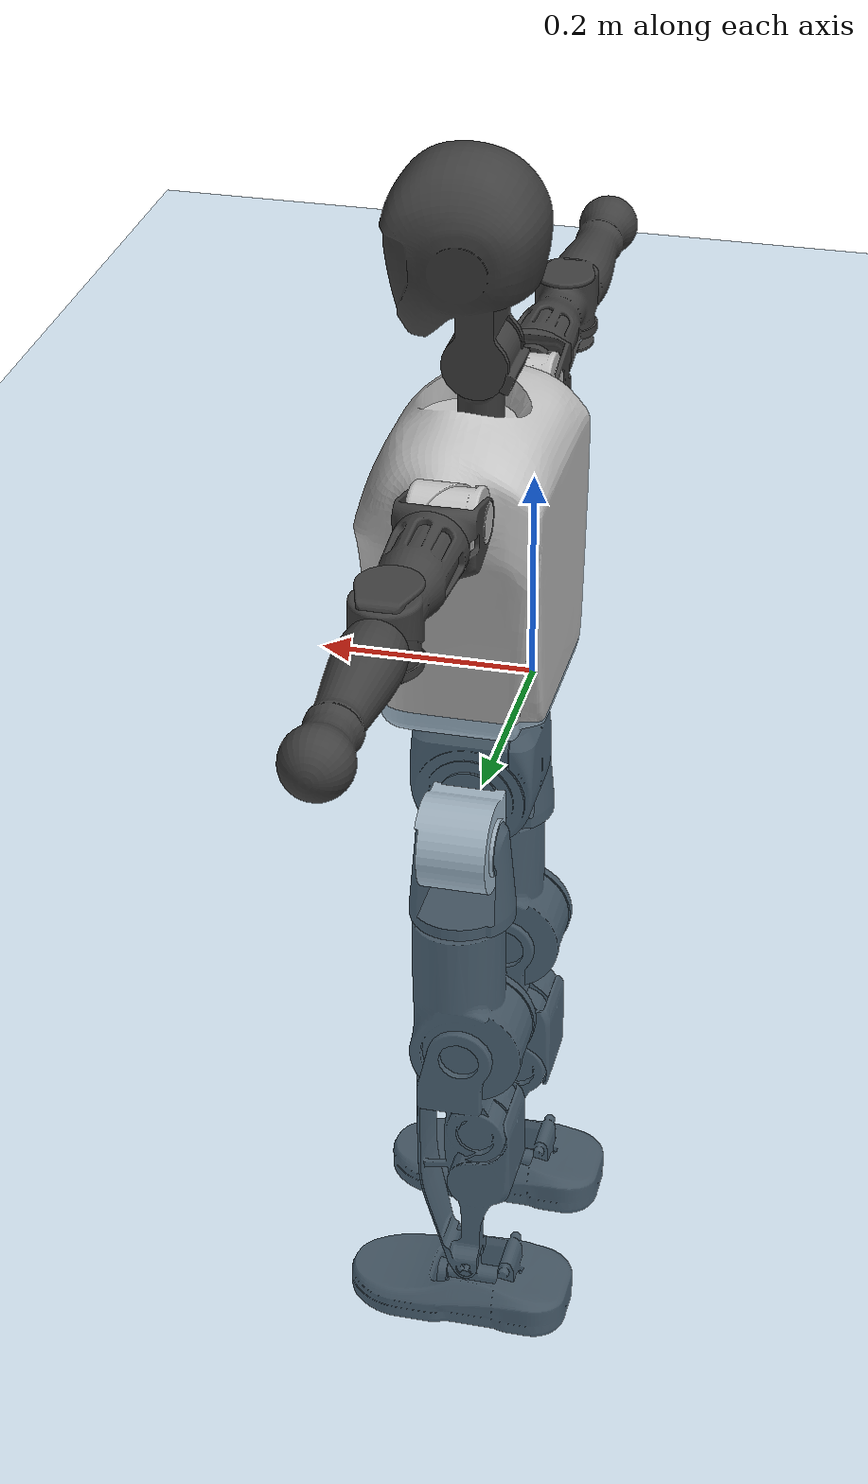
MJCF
<mujoco model="T1">
  <compiler angle="radian" assetdir="assets" balanceinertia="true" inertiafromgeom="false"/>

  <option timestep="0.005" density="1.2" viscosity="2e-05"/>

  <size nkey="1"/>

  <visual>
    <quality shadowsize="8192"/>
    <map shadowclip="0.5"/>
  </visual>

  <default>
    <default class="/">
      <joint armature="0.01" damping="0.01" frictionloss="0.1"/>
      <geom contype="0" conaffinity="0" group="1" solref="-1000 -80"/>
      <site size="0.01 0.005 0.005" group="5"/>
      <general forcelimited="true" biastype="affine" gainprm="25" biasprm="0 -25 -0.6"/>
      <default class="t1">
        <geom rgba="0.25 0.25 0.25 1"/>
        <default class="visual">
          <geom type="mesh" group="2"/>
        </default>
        <default class="collision">
          <geom group="3"/>
        </default>
        <default class="foot">
          <geom size="0.1115 0.05 0.015" type="box" condim="6" group="4" priority="1" solimp="0.015 1 0.015"/>
        </default>
        <default class="reward_collision_sphere">
          <geom group="5" rgba="1 0 0 1"/>
        </default>
      </default>
    </default>
  </default>

  <asset>
    <texture type="skybox" colorspace="auto" name="//unnamed_texture_0" builtin="gradient" rgb1="0.95 0.95 0.95" rgb2="0.95 0.95 0.95" width="100" height="600"/>
    <texture type="2d" colorspace="auto" name="texplane" builtin="checker" rgb1="0.345 0.575 0.748" rgb2="0.345 0.575 0.748" markrgb="1 1 1" width="512" height="512"/>
    <material name="MatPlane" class="/" texture="texplane" texuniform="true" texrepeat="2 2" specular="0.9"/>
    <mesh name="Trunk" class="/" file="Trunk.stl"/>
    <mesh name="H1" class="/" file="H1.stl"/>
    <mesh name="H2" class="/" file="H2.stl"/>
    <mesh name="AL1" class="/" file="AL1.stl"/>
    <mesh name="AL2" class="/" file="AL2.stl"/>
    <mesh name="AL3" class="/" file="AL3.stl"/>
    <mesh name="left_hand_link" class="/" file="left_hand_link.stl"/>
    <mesh name="AR1" class="/" file="AR1.stl"/>
    <mesh name="AR2" class="/" file="AR2.stl"/>
    <mesh name="AR3" class="/" file="AR3.stl"/>
    <mesh name="right_hand_link" class="/" file="right_hand_link.stl"/>
    <mesh name="Waist" class="/" file="Waist.stl"/>
    <mesh name="Hip_Pitch_Left" class="/" file="Hip_Pitch_Left.stl"/>
    <mesh name="Hip_Roll_Left" class="/" file="Hip_Roll_Left.stl"/>
    <mesh name="Hip_Yaw_Left" class="/" file="Hip_Yaw_Left.stl"/>
    <mesh name="Shank_Left" class="/" file="Shank_Left.stl"/>
    <mesh name="Ankle_Cross_Left" class="/" file="Ankle_Cross_Left.stl"/>
    <mesh name="left_foot_link" class="/" file="left_foot_link.stl"/>
    <mesh name="Hip_Pitch_Right" class="/" file="Hip_Pitch_Right.stl"/>
    <mesh name="Hip_Roll_Right" class="/" file="Hip_Roll_Right.stl"/>
    <mesh name="Hip_Yaw_Right" class="/" file="Hip_Yaw_Right.stl"/>
    <mesh name="Shank_Right" class="/" file="Shank_Right.stl"/>
    <mesh name="Ankle_Cross_Right" class="/" file="Ankle_Cross_Right.stl"/>
    <mesh name="right_foot_link" class="/" file="right_foot_link.stl"/>
  </asset>

  <worldbody>
    <geom name="floor" class="/" size="100 100 0.125" type="plane" group="0" material="MatPlane"/>
    <light name="toplight_shadow" class="/" pos="0 0 5" dir="0.0990148 0.0990148 -0.990148" type="directional" ambient="0.04 0.04 0.04" diffuse="0.55 0.55 0.55" specular="0.12 0.12 0.12"/>
    <light name="toplight_fill" class="/" pos="0 0 5" dir="0.0990148 0.0990148 -0.990148" type="directional" castshadow="false" ambient="0.04 0.04 0.04" diffuse="0.3 0.3 0.3" specular="0.08 0.08 0.08"/>
    <body name="trunk" childclass="t1" pos="-0.00045463 -2.72977e-05 0.00127737" quat="1 1.83086e-05 0.00015536 -0.000106327">
      <inertial pos="0.0430066 -0.00129556 0.108591" quat="0.999946 -0.00228513 -0.0100593 0.00110988" mass="8.21625" diaginertia="0.0272136 0.0399227 0.0608231"/>
      <joint name="//unnamed_joint_0" type="free" armature="0" damping="0" frictionloss="0"/>
      <geom name="//unnamed_geom_1" class="visual" rgba="0.76 0.76 0.76 1" mesh="Trunk"/>
      <geom name="//unnamed_geom_2" class="collision" size="0.067294 0.0897253 0.134588" pos="0.0472305 0 0.123134" type="box"/>
      <geom name="//unnamed_geom_3" class="reward_collision_sphere" size="0.103184" pos="0.0472305 0 0.102611"/>
      <geom name="//unnamed_geom_4" class="reward_collision_sphere" size="0.0134588" pos="0.0472305 0.0746699 0"/>
      <geom name="//unnamed_geom_5" class="reward_collision_sphere" size="0.0134588" pos="0.0472305 -0.0746699 0"/>
      <geom name="//unnamed_geom_6" class="reward_collision_sphere" size="0.0134588" pos="0.0472305 0.0939962 0.184701"/>
      <geom name="//unnamed_geom_7" class="reward_collision_sphere" size="0.0134588" pos="0.0472305 -0.0939962 0.184701"/>
      <site name="imu" pos="0.0118004 -0.00919859 -0.00446982" size="0.00897253"/>
      <camera name="track" pos="0 -1.75694 0" quat="0.707107 0.707107 0 0" mode="trackcom"/>
      <camera name="ego_camera" pos="0.0960354 0 0.430968" quat="-0.5 -0.5 0.5 0.5"/>
      <body name="H1" pos="0.0494874 -0.000392514 0.249493" quat="1 -0.000163943 -8.31716e-05 -5.50118e-05">
        <inertial pos="-0.000530059 -0.0008631 0.0593453" quat="0.761317 -0.0141908 -0.000999074 0.648224" mass="0.325297" diaginertia="7.47257e-05 0.000117032 0.000174401"/>
        <joint name="AAHead_yaw" pos="0 0 0" axis="-0.00155072 -1.44509e-05 0.999999" stiffness="0.00805231" range="-1.5879 1.57342" armature="0.00869659" damping="0.00559791" frictionloss="0.093817"/>
        <geom name="//unnamed_geom_8" class="visual" mesh="H1"/>
        <body name="H2" pos="-0.000641078 -0.00223161 0.0631034" quat="1 -4.91338e-05 4.68134e-05 4.95709e-05">
          <inertial pos="0.00769095 0.00285201 0.101405" quat="0.988165 0.104382 -0.0790926 -0.07987" mass="0.470917" diaginertia="0.000609851 0.00102353 0.00196759"/>
          <joint name="Head_pitch" pos="0 0 0" axis="0.00287922 -0.999991 0.00295716" range="-1.225 0.35966" armature="0.00820507" damping="0.00483867" frictionloss="0.0890578"/>
          <geom name="//unnamed_geom_9" class="visual" mesh="H2"/>
          <geom name="//unnamed_geom_10" class="collision" size="0.0717802" pos="0.00787175 0 0.112873"/>
          <geom name="//unnamed_geom_11" class="reward_collision_sphere" size="0.0807528" pos="0.0157435 0 0.102611"/>
        </body>
      </body>
      <body name="AL1" pos="0.0461541 0.0947616 0.225164" quat="1 -2.34723e-05 0.000222719 -0.000282838">
        <inertial pos="-0.00146839 0.0386126 0.00200305" quat="0.502915 0.494976 -0.505631 0.496399" mass="0.38465" diaginertia="0.000412654 0.000673404 0.000328243"/>
        <joint name="Left_Shoulder_Pitch" pos="0 0 0" axis="0.00465398 0.999984 0.00330052" range="-3.3473 1.21157" armature="0.00875783" damping="0.0113634" frictionloss="0.0886428"/>
        <geom name="//unnamed_geom_12" class="visual" rgba="0.76 0.76 0.76 1" mesh="AL1"/>
        <body name="AL2" pos="-0.000166221 0.0444626 -0.00102686" quat="0.999999 0.000232766 0.00129413 7.91004e-05">
          <inertial pos="0.00185395 0.033177 -0.0012465" quat="0.487992 0.511775 -0.487979 0.51169" mass="0.122242" diaginertia="0.000123562 0.000188321 0.000207211"/>
          <joint name="Left_Shoulder_Roll" pos="0 0 0" axis="-0.999986 -0.00120418 -0.00516394" range="-1.5803 1.7385" armature="0.00875972" damping="0" frictionloss="0.09425"/>
          <geom name="//unnamed_geom_13" class="visual" mesh="AL2"/>
          <body name="AL3" pos="0.000856414 0.0557885 0.000935144" quat="0.999999 -0.000528725 0.000201458 0.000926401">
            <inertial pos="1.06343e-05 0.0755094 -0.000456133" quat="0.702818 0.71135 -0.000938169 -0.00530139" mass="0.755522" diaginertia="0.00396362 0.00690504 0.000729871"/>
            <joint name="Left_Elbow_Pitch" pos="0 0 0" axis="0.000264203 -1 -0.000138809" range="-2.26012 2.26625" armature="0.00909151" damping="0.0125584" frictionloss="0.0888004"/>
            <geom name="//unnamed_geom_14" class="visual" mesh="AL3"/>
            <geom name="//unnamed_geom_15" class="collision" size="0.0269176 0.067294" pos="0 0.0439235 0" quat="0.707105 0.707108 0 0" type="cylinder"/>
            <geom name="//unnamed_geom_16" class="reward_collision_sphere" size="0.0323011"/>
            <body name="left_hand_link" pos="0.000115855 0.131984 0.0013954" quat="0.999999 -1.65377e-05 0.000646631 0.000847821">
              <inertial pos="-0.00043424 0.096995 -0.00142837" quat="0.708204 0.705946 -0.00638627 0.0067823" mass="0.229595" diaginertia="0.00237763 0.00412966 0.000238799"/>
              <joint name="Left_Elbow_Yaw" pos="0 0 0" axis="0.00539448 0.0104225 0.999931" range="-2.44045 0.0231413" armature="0.00905594" damping="0.00840567" frictionloss="0.100279"/>
              <geom name="//unnamed_geom_17" class="visual" mesh="left_hand_link"/>
              <geom name="//unnamed_geom_18" class="collision" size="0.0269176 0.0785096" pos="0 0.114201 0" quat="0.707105 0.707108 0 0" type="cylinder"/>
              <geom name="//unnamed_geom_19" class="reward_collision_sphere" size="0.0448627"/>
              <geom name="//unnamed_geom_20" class="reward_collision_sphere" size="0.0314039" pos="0 0.0966316 0"/>
              <geom name="//unnamed_geom_21" class="reward_collision_sphere" size="0.0314039" pos="0 0.188871 0"/>
            </body>
          </body>
        </body>
      </body>
      <body name="AR1" pos="0.0431427 -0.0913498 0.224611" quat="1 0.000108418 0.000556444 3.83545e-05">
        <inertial pos="-0.00039085 -0.0390471 2.31182e-05" quat="0.502225 0.49599 -0.506014 0.495695" mass="0.377839" diaginertia="0.000412601 0.00067926 0.000330351"/>
        <joint name="Right_Shoulder_Pitch" pos="0 0 0" axis="-0.000906633 -0.999994 -0.00327965" stiffness="0.013609" range="-1.18358 3.31022" armature="0.00886142" damping="0.0159531" frictionloss="0.0888607"/>
        <geom name="//unnamed_geom_22" class="visual" rgba="0.76 0.76 0.76 1" mesh="AR1"/>
        <body name="AR2" pos="-0.00243151 -0.0390586 0.000298243" quat="1 1.70732e-05 -2.67589e-05 6.0133e-05">
          <inertial pos="0.00278266 -0.034309 -0.000310777" quat="0.511882 0.487509 -0.511953 0.488073" mass="0.114206" diaginertia="0.000116811 0.000173164 0.000200753"/>
          <joint name="Right_Shoulder_Roll" pos="0 0 0" axis="-0.999991 0.00400582 0.00154101" stiffness="0.00338402" range="-1.74769 1.52913" armature="0.00892149" damping="0.00432671" frictionloss="0.0807643"/>
          <geom name="//unnamed_geom_23" class="visual" mesh="AR2"/>
          <body name="AR3" pos="0.000144121 -0.0508462 0.00149365" quat="1 0.000119515 -0.000107942 -4.60252e-05">
            <inertial pos="-0.000475086 -0.0741259 -0.00036255" quat="0.704581 0.709533 -0.00969661 -0.00586773" mass="0.741769" diaginertia="0.00391338 0.00673226 0.000714"/>
            <joint name="Right_Elbow_Pitch" pos="0 0 0" axis="-0.0016583 0.999998 0.00132993" stiffness="0.00882363" range="-2.27092 2.27453" armature="0.00906136" damping="0.00832008" frictionloss="0.0995331"/>
            <geom name="//unnamed_geom_24" class="visual" mesh="AR3"/>
            <geom name="//unnamed_geom_25" class="collision" size="0.0269176 0.067294" pos="0 -0.0439235 0" quat="0.707105 0.707108 0 0" type="cylinder"/>
            <geom name="//unnamed_geom_26" class="reward_collision_sphere" size="0.0323011"/>
            <body name="right_hand_link" pos="-0.00224143 -0.12933 -0.00148997" quat="1 -3.89666e-05 4.63108e-05 -3.25739e-05">
              <inertial pos="-0.000773626 -0.0959699 0.00288631" quat="0.707022 0.707124 0.00802944 -0.00562102" mass="0.229061" diaginertia="0.00238507 0.00412295 0.000237025"/>
              <joint name="Right_Elbow_Yaw" pos="0 0 0" axis="-0.000908498 -0.00202515 0.999998" range="-0.0284049 2.42673" armature="0.0101275" damping="0.00529152" frictionloss="0.0891475"/>
              <geom name="//unnamed_geom_27" class="visual" mesh="right_hand_link"/>
              <geom name="//unnamed_geom_28" class="collision" size="0.0269176 0.0785096" pos="0 -0.114201 0" quat="0.707105 0.707108 0 0" type="cylinder"/>
              <geom name="//unnamed_geom_29" class="reward_collision_sphere" size="0.0448627"/>
              <geom name="//unnamed_geom_30" class="reward_collision_sphere" size="0.0314039" pos="0 -0.0966316 0"/>
              <geom name="//unnamed_geom_31" class="reward_collision_sphere" size="0.0314039" pos="0 -0.188871 0"/>
            </body>
          </body>
        </body>
      </body>
      <body name="Waist" pos="0.0493142 -0.00229473 -0.119629" quat="1 -1.02647e-05 3.98301e-06 2.20954e-05">
        <inertial pos="0.00356665 -0.000190877 0.00783934" quat="0.983833 0.00209071 -0.178981 0.00587473" mass="1.84391" diaginertia="0.00159416 0.00265352 0.00529603"/>
        <joint name="Waist" pos="0 0 0" axis="0.00362681 -0.00284252 0.999989" range="-1.52327 1.5538" armature="0.0082897" damping="0.010337" frictionloss="0.0878893"/>
        <geom name="//unnamed_geom_32" class="visual" mesh="Waist"/>
        <body name="Hip_Pitch_Left" pos="-0.0014252 0.0941719 -0.000163591" quat="1 0.000288249 0.000803668 -0.000490827">
          <inertial pos="0.000709911 -0.00435613 -0.0188813" quat="0.975065 0.22138 0.0151238 0.00319107" mass="0.739537" diaginertia="0.000542459 0.000783891 0.00141569"/>
          <joint name="Left_Hip_Pitch" pos="0 0 0" axis="0.00120568 0.999999 -0.000418931" stiffness="0.00262113" range="-1.79447 1.57961" armature="0.00891216" damping="0.00635695" frictionloss="0.0895383"/>
          <geom name="//unnamed_geom_33" class="visual" rgba="0.76 0.76 0.76 1" mesh="Hip_Pitch_Left"/>
          <body name="Hip_Roll_Left" pos="-0.000369321 0.00016528 -0.0206407" quat="1 -0.000320704 0.000549004 -0.000148032">
            <inertial pos="0.00173823 0.000245188 -0.0539546" quat="0.707012 -0.00603983 -0.00653435 0.707146" mass="0.278703" diaginertia="0.000523692 0.000775527 0.000573193"/>
            <joint name="Left_Hip_Roll" pos="0 0 0" axis="-0.999995 0.00204135 -0.00239196" range="-1.58671 0.220736" armature="0.00907498" damping="0.00825661" frictionloss="0.0955238"/>
            <geom name="//unnamed_geom_34" class="visual" mesh="Hip_Roll_Left"/>
            <geom name="//unnamed_geom_35" class="reward_collision_sphere" size="0.0493489"/>
            <body name="Hip_Yaw_Left" pos="0.00173858 -0.00128728 -0.0851578" quat="1 -8.84605e-07 -5.02451e-05 -1.26919e-05">
              <inertial pos="-0.00510444 -1.98853e-05 -0.0917634" quat="0.692215 -0.0382386 -0.0228201 0.720316" mass="1.57693" diaginertia="0.00779073 0.0128524 0.0029388"/>
              <joint name="Left_Hip_Yaw" pos="0 0 0" axis="0.00419626 -0.00472755 -0.99998" range="-1.00725 1.00581" armature="0.00908005" damping="0.0166567" frictionloss="0.0895649"/>
              <geom name="//unnamed_geom_36" class="visual" mesh="Hip_Yaw_Left"/>
              <geom name="//unnamed_geom_37" class="collision" size="0.0448627 0.0717802" type="cylinder"/>
              <body name="Shank_Left" pos="-0.00926977 0.000461363 -0.137543" quat="1 3.60773e-06 -8.70215e-05 -4.51839e-05">
                <inertial pos="-0.00476752 -0.000343238 -0.126989" quat="0.997649 -0.00150981 -0.0187897 0.0658876" mass="1.23475" diaginertia="0.0105063 0.0181294 0.00210784"/>
                <joint name="Left_Knee_Pitch" pos="0 0 0" axis="0.000119034 0.999991 -0.00427303" range="-0.0185601 2.33766" armature="0.00862163" damping="0.00826254" frictionloss="0.0973541"/>
                <geom name="//unnamed_geom_38" class="visual" mesh="Shank_Left"/>
                <geom name="//unnamed_geom_39" class="collision" size="0.0448627 0.067294" pos="0 0 -0.123134" type="cylinder"/>
                <geom name="//unnamed_geom_40" class="reward_collision_sphere" size="0.0583214"/>
                <body name="Ankle_Cross_Left" pos="-0.000652646 8.31688e-05 -0.28835" quat="1 8.1971e-07 1.22054e-06 5.54929e-07">
                  <inertial pos="-0.00285841 -0.000206059 -0.0106428" quat="0.444853 0.552762 0.54684 0.444438" mass="0.0539372" diaginertia="9.17615e-06 1.36522e-05 1.32176e-05"/>
                  <joint name="Left_Ankle_Pitch" pos="0 0 0" axis="0.000752993 1 4.3037e-05" stiffness="0.00269294" range="-0.917577 0.348868" armature="0.00913452" damping="0.00352626" frictionloss="0.0978749"/>
                  <geom name="//unnamed_geom_41" class="visual" mesh="Ankle_Cross_Left"/>
                  <body name="left_foot_link" pos="0.000392912 1.39622e-05 -0.0152022" quat="1 0.000401812 -0.000160319 3.48433e-05">
                    <inertial pos="0.000716986 -0.00203392 -0.00996195" quat="-0.000282536 0.621253 -0.00032643 0.78361" mass="0.496895" diaginertia="0.000819445 0.00124304 0.00244989"/>
                    <joint name="Left_Ankle_Roll" pos="0 0 0" axis="-0.999997 0.00210022 0.00101885" range="-0.449056 0.458503" armature="0.00901846" damping="0.015272" frictionloss="0.0911384"/>
                    <geom name="//unnamed_geom_42" class="visual" mesh="left_foot_link"/>
                    <geom name="left_foot" class="foot" size="0.101292 0.0487689 0.0136941" pos="0.00787175 0 -0.0153917"/>
                    <geom name="//unnamed_geom_44" class="reward_collision_sphere" size="0.0466572" pos="0.00787175 0 -0.0153917"/>
                    <geom name="//unnamed_geom_45" class="reward_collision_sphere" size="0.0269176" pos="0.0747817 -0.0202048 -0.0153917"/>
                    <geom name="//unnamed_geom_46" class="reward_collision_sphere" size="0.0269176" pos="-0.0551023 -0.0202048 -0.0153917"/>
                    <site name="left_foot" class="foot" pos="0.00787175 0 -0.0153917" size="0.00897253"/>
                  </body>
                </body>
              </body>
            </body>
          </body>
        </body>
        <body name="Hip_Pitch_Right" pos="0.00177552 -0.092248 0.00112845" quat="1 -1.22242e-05 -5.44819e-05 0.000341242">
          <inertial pos="0.000206982 0.00555373 -0.0161028" quat="0.9725 -0.231826 0.0222339 -0.00247596" mass="0.728504" diaginertia="0.000539081 0.000754742 0.00142613"/>
          <joint name="Right_Hip_Pitch" pos="0 0 0" axis="0.00206747 -0.999989 -0.00411527" range="-1.56582 1.78897" armature="0.0096323" damping="0.0120965" frictionloss="0.0891265"/>
          <geom name="//unnamed_geom_47" class="visual" rgba="0.76 0.76 0.76 1" mesh="Hip_Pitch_Right"/>
          <body name="Hip_Roll_Right" pos="-0.000455622 0.000670967 -0.0205691" quat="0.999999 0.00125226 -0.000184638 -0.000474209">
            <inertial pos="0.00363579 -0.000977389 -0.0556103" quat="0.703066 -0.00448118 -0.00293342 0.711105" mass="0.274463" diaginertia="0.000515833 0.000775392 0.000579507"/>
            <joint name="Right_Hip_Roll" pos="0 0 0" axis="-0.999989 0.00454637 0.000980343" range="-0.203827 1.59806" armature="0.00923645" damping="0.00536649" frictionloss="0.0892416"/>
            <geom name="//unnamed_geom_48" class="visual" mesh="Hip_Roll_Right"/>
            <geom name="//unnamed_geom_49" class="reward_collision_sphere" size="0.0493489"/>
            <body name="Hip_Yaw_Right" pos="0.000668782 -0.00100195 -0.0837271" quat="0.999999 0.000370614 -0.000919098 0.000742023">
              <inertial pos="-0.00496272 2.34675e-05 -0.0925823" quat="0.714437 -0.0294985 -0.0324327 0.698325" mass="1.58532" diaginertia="0.00816888 0.0139777 0.00300329"/>
              <joint name="Right_Hip_Yaw" pos="0 0 0" axis="0.000197529 0.00149156 -0.999999" range="-1.00319 0.95919" armature="0.00913585" damping="0.0130043" frictionloss="0.0807326"/>
              <geom name="//unnamed_geom_50" class="visual" mesh="Hip_Yaw_Right"/>
              <geom name="//unnamed_geom_51" class="collision" size="0.0448627 0.0717802" type="cylinder"/>
              <body name="Shank_Right" pos="-0.0126255 7.84277e-05 -0.13772" quat="1 -0.000699066 -1.88885e-05 0.000544316">
                <inertial pos="-0.00301102 -0.000274998 -0.125355" quat="0.999265 -0.000540128 -0.02337 -0.0303724" mass="1.33266" diaginertia="0.0106882 0.0178968 0.0022059"/>
                <joint name="Right_Knee_Pitch" pos="0 0 0" axis="0.00262508 -0.999991 0.00325221" range="-2.31944 0.0093779" armature="0.00923641" damping="0.00875434" frictionloss="0.0863022"/>
                <geom name="//unnamed_geom_52" class="visual" mesh="Shank_Right"/>
                <geom name="//unnamed_geom_53" class="collision" size="0.0448627 0.067294" pos="0 0 -0.123134" type="cylinder"/>
                <geom name="//unnamed_geom_54" class="reward_collision_sphere" size="0.0583214"/>
                <body name="Ankle_Cross_Right" pos="0.00179254 -1.79549e-05 -0.288183" quat="1 -0.000871437 -0.000318029 -0.000224443">
                  <inertial pos="-0.00297794 -4.37173e-05 -0.00819222" quat="0.445377 0.55279 0.549171 0.440992" mass="0.0509878" diaginertia="8.67172e-06 1.3276e-05 1.27415e-05"/>
                  <joint name="Right_Ankle_Pitch" pos="0 0 0" axis="0.0108503 -0.999912 -0.00762901" range="-0.350682 0.854483" armature="0.00956099" damping="0.00361236" frictionloss="0.0790124"/>
                  <geom name="//unnamed_geom_55" class="visual" mesh="Ankle_Cross_Right"/>
                  <body name="right_foot_link" pos="0.00163172 -0.00118861 -0.0123721" quat="1 -3.17388e-05 -9.88505e-05 -5.50926e-05">
                    <inertial pos="-0.000964298 -0.000559507 -0.0110103" quat="8.8715e-05 0.620793 -0.000178467 0.783974" mass="0.498962" diaginertia="0.000800433 0.00123801 0.00247984"/>
                    <joint name="Right_Ankle_Roll" pos="0 0 0" axis="-0.999963 -0.00771038 -0.00374887" range="-0.390368 0.428846" armature="0.00847115" damping="0.0087028" frictionloss="0.0918728"/>
                    <geom name="//unnamed_geom_56" class="visual" mesh="right_foot_link"/>
                    <geom name="right_foot" class="foot" size="0.0923721 0.0452601 0.0136528" pos="0.00787175 0 -0.0153917"/>
                    <geom name="//unnamed_geom_58" class="reward_collision_sphere" size="0.0358901"/>
                    <geom name="//unnamed_geom_59" class="reward_collision_sphere" size="0.0269176" pos="0.00787175 0 -0.0153917"/>
                    <geom name="//unnamed_geom_60" class="reward_collision_sphere" size="0.0269176" pos="0.0747817 0.0202048 -0.0153917"/>
                    <geom name="//unnamed_geom_61" class="reward_collision_sphere" size="0.0269176" pos="-0.0551023 0.0202048 -0.0153917"/>
                    <site name="right_foot" class="foot" pos="0.00787175 0 -0.0153917" size="0.00897253"/>
                  </body>
                </body>
              </body>
            </body>
          </body>
        </body>
      </body>
    </body>
  </worldbody>

  <contact>
    <pair class="/" geom1="floor" geom2="left_foot" name="//unnamed_contact_0"/>
    <pair class="/" geom1="floor" geom2="right_foot" name="//unnamed_contact_1"/>
  </contact>

  <actuator>
    <general name="AAHead_yaw" class="/" joint="AAHead_yaw" forcerange="-6.42537 6.42537" gainprm="23.1908" biasprm="0 -23.1908 -0.51236"/>
    <general name="Head_pitch" class="/" joint="Head_pitch" forcerange="-6.32438 6.32438" gainprm="23.1908" biasprm="0 -23.1908 -0.51236"/>
    <general name="Left_Shoulder_Pitch" class="/" joint="Left_Shoulder_Pitch" forcerange="-16.2042 16.2042" gainprm="23.1908" biasprm="0 -23.1908 -0.51236"/>
    <general name="Left_Shoulder_Roll" class="/" joint="Left_Shoulder_Roll" forcerange="-16.1947 16.1947" gainprm="23.1908" biasprm="0 -23.1908 -0.51236"/>
    <general name="Left_Elbow_Pitch" class="/" joint="Left_Elbow_Pitch" forcerange="-17.1736 17.1736" gainprm="23.1908" biasprm="0 -23.1908 -0.51236"/>
    <general name="Left_Elbow_Yaw" class="/" joint="Left_Elbow_Yaw" forcerange="-16.414 16.414" gainprm="23.1908" biasprm="0 -23.1908 -0.51236"/>
    <general name="Right_Shoulder_Pitch" class="/" joint="Right_Shoulder_Pitch" forcerange="-16.468 16.468" gainprm="23.1908" biasprm="0 -23.1908 -0.51236"/>
    <general name="Right_Shoulder_Roll" class="/" joint="Right_Shoulder_Roll" forcerange="-16.2387 16.2387" gainprm="23.1908" biasprm="0 -23.1908 -0.51236"/>
    <general name="Right_Elbow_Pitch" class="/" joint="Right_Elbow_Pitch" forcerange="-16.7473 16.7473" gainprm="23.1908" biasprm="0 -23.1908 -0.51236"/>
    <general name="Right_Elbow_Yaw" class="/" joint="Right_Elbow_Yaw" forcerange="-17.0778 17.0778" gainprm="23.1908" biasprm="0 -23.1908 -0.51236"/>
    <general name="Waist" class="/" joint="Waist" forcerange="-26.454 26.454" gainprm="23.1908" biasprm="0 -23.1908 -0.51236"/>
    <general name="Left_Hip_Pitch" class="/" joint="Left_Hip_Pitch" forcerange="-36.6343 36.6343" gainprm="23.1908" biasprm="0 -23.1908 -0.51236"/>
    <general name="Left_Hip_Roll" class="/" joint="Left_Hip_Roll" forcerange="-26.292 26.292" gainprm="23.1908" biasprm="0 -23.1908 -0.51236"/>
    <general name="Left_Hip_Yaw" class="/" joint="Left_Hip_Yaw" forcerange="-25.8701 25.8701" gainprm="23.1908" biasprm="0 -23.1908 -0.51236"/>
    <general name="Left_Knee_Pitch" class="/" joint="Left_Knee_Pitch" forcerange="-56.8266 56.8266" gainprm="23.1908" biasprm="0 -23.1908 -0.51236"/>
    <general name="Left_Ankle_Pitch" class="/" joint="Left_Ankle_Pitch" forcerange="-17.7632 17.7632" gainprm="23.1908" biasprm="0 -23.1908 -0.51236"/>
    <general name="Left_Ankle_Roll" class="/" joint="Left_Ankle_Roll" forcerange="-13.3855 13.3855" gainprm="23.1908" biasprm="0 -23.1908 -0.51236"/>
    <general name="Right_Hip_Pitch" class="/" joint="Right_Hip_Pitch" forcerange="-43.7352 43.7352" gainprm="23.1908" biasprm="0 -23.1908 -0.51236"/>
    <general name="Right_Hip_Roll" class="/" joint="Right_Hip_Roll" forcerange="-26.1226 26.1226" gainprm="23.1908" biasprm="0 -23.1908 -0.51236"/>
    <general name="Right_Hip_Yaw" class="/" joint="Right_Hip_Yaw" forcerange="-25.8586 25.8586" gainprm="23.1908" biasprm="0 -23.1908 -0.51236"/>
    <general name="Right_Knee_Pitch" class="/" joint="Right_Knee_Pitch" forcerange="-54.1316 54.1316" gainprm="23.1908" biasprm="0 -23.1908 -0.51236"/>
    <general name="Right_Ankle_Pitch" class="/" joint="Right_Ankle_Pitch" forcerange="-18.4031 18.4031" gainprm="23.1908" biasprm="0 -23.1908 -0.51236"/>
    <general name="Right_Ankle_Roll" class="/" joint="Right_Ankle_Roll" forcerange="-12.3583 12.3583" gainprm="23.1908" biasprm="0 -23.1908 -0.51236"/>
  </actuator>

  <sensor>
    <gyro site="imu" name="imu_angular_velocity"/>
    <velocimeter site="imu" name="imu_linear_velocity"/>
    <framelinvel objtype="site" objname="left_foot" name="left_foot_global_linear_velocity"/>
    <framelinvel objtype="site" objname="right_foot" name="right_foot_global_linear_velocity"/>
  </sensor>

  <keyframe>
    <key name="home" qpos="0 0 0.6385 1 0 0 0 0 0 0 1.4 0 -0.4 0 -1.4 0 0.4 0 -0.4 0 0 0.8 -0.4 0 0.4 0 0 -0.8 0.4 0"/>
  </keyframe>
</mujoco>
